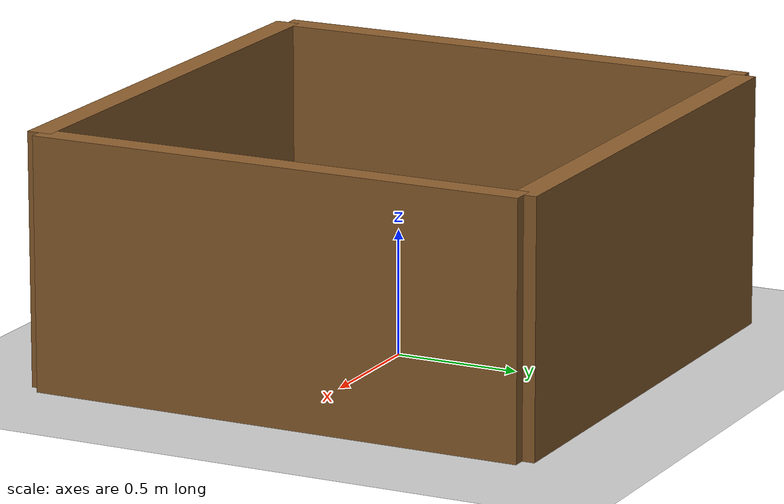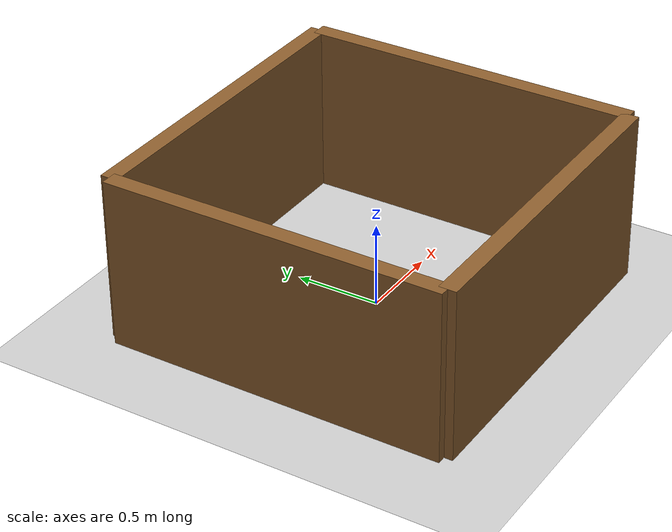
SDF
<sdf version="1.8">
 <world name="default">
  <scene><shadows>0</shadows></scene>
  <physics type="ode">
   <real_time_update_rate>1000.0</real_time_update_rate>
   <max_step_size>0.001</max_step_size>
   <real_time_factor>1</real_time_factor>
   <ode>
    <solver>
     <type>quick</type>
     <iters>150</iters>
     <precon_iters>0</precon_iters>
     <sor>1.400000</sor>
     <use_dynamic_moi_rescaling>1</use_dynamic_moi_rescaling>
    </solver>
    <constraints>
     <cfm>0.00001</cfm>
     <erp>0.2</erp>
     <contact_max_correcting_vel>2000.000000</contact_max_correcting_vel>
     <contact_surface_layer>0.01000</contact_surface_layer>
    </constraints>
   </ode>
  </physics>
  <plugin filename="gz-sim-physics-system" name="gz::sim::systems::Physics"/>
  <plugin filename="gz-sim-user-commands-system" name="gz::sim::systems::UserCommands"/>
  <plugin filename="gz-sim-scene-broadcaster-system" name="gz::sim::systems::SceneBroadcaster"/>
  <plugin filename="gz-sim-contact-system" name="gz::sim::systems::Contact"/>
  <plugin filename="gz-sim-sensors-system" name="gz::sim::systems::Sensors">
   <render_engine>ogre2</render_engine>
  </plugin>
  <plugin filename="gz-sim-imu-system" name="gz::sim::systems::Imu"/>
  <light type="directional" name="sun">
   <pose>0 0 10 0 0 0</pose>
   <diffuse>0.8 0.8 0.8 1</diffuse>
   <specular>0.2 0.2 0.2 1</specular>
   <direction>-0.5 0.1 -0.9</direction>
   <attenuation>
    <range>1000</range>
    <constant>0.9</constant>
    <linear>0.01</linear>
    <quadratic>0.001</quadratic>
   </attenuation>
  </light>
  <model name="ground_plane">
   <static>true</static>
   <link name="link">
    <collision name="collision">
     <geometry><plane><normal>0 0 1</normal><size>100 100</size></plane></geometry>
    </collision>
    <visual name="visual">
     <geometry><plane><normal>0 0 1</normal><size>100 100</size></plane></geometry>
     <material>
      <ambient>0.8 0.8 0.8 1</ambient>
      <diffuse>0.8 0.8 0.8 1</diffuse>
      <specular>0.0 0.0 0.0 1</specular>
     </material>
    </visual>
   </link>
  </model>
  <model name="wall_north">
   <static>true</static>
   <pose>0 1 0.5 0 0 0</pose>
   <link name="link">
    <collision name="collision"><geometry><box><size>2 0.1 1</size></box></geometry></collision>
    <visual name="visual">
     <geometry><box><size>2 0.1 1</size></box></geometry>
     <material>
      <ambient>0.45 0.30 0.15 1</ambient>
      <diffuse>0.55 0.37 0.18 1</diffuse>
      <specular>0.05 0.05 0.05 1</specular>
     </material>
    </visual>
   </link>
  </model>
  <model name="wall_south">
   <static>true</static>
   <pose>0 -1 0.5 0 0 0</pose>
   <link name="link">
    <collision name="collision"><geometry><box><size>2 0.1 1</size></box></geometry></collision>
    <visual name="visual">
     <geometry><box><size>2 0.1 1</size></box></geometry>
     <material>
      <ambient>0.45 0.30 0.15 1</ambient>
      <diffuse>0.55 0.37 0.18 1</diffuse>
      <specular>0.05 0.05 0.05 1</specular>
     </material>
    </visual>
   </link>
  </model>
  <model name="wall_east">
   <static>true</static>
   <pose>1 0 0.5 0 0 0</pose>
   <link name="link">
    <collision name="collision"><geometry><box><size>0.1 2 1</size></box></geometry></collision>
    <visual name="visual">
     <geometry><box><size>0.1 2 1</size></box></geometry>
     <material>
      <ambient>0.45 0.30 0.15 1</ambient>
      <diffuse>0.55 0.37 0.18 1</diffuse>
      <specular>0.05 0.05 0.05 1</specular>
     </material>
    </visual>
   </link>
  </model>
  <model name="wall_west">
   <static>true</static>
   <pose>-1 0 0.5 0 0 0</pose>
   <link name="link">
    <collision name="collision"><geometry><box><size>0.1 2 1</size></box></geometry></collision>
    <visual name="visual">
     <geometry><box><size>0.1 2 1</size></box></geometry>
     <material>
      <ambient>0.45 0.30 0.15 1</ambient>
      <diffuse>0.55 0.37 0.18 1</diffuse>
      <specular>0.05 0.05 0.05 1</specular>
     </material>
    </visual>
   </link>
  </model>
 </world>
</sdf>
